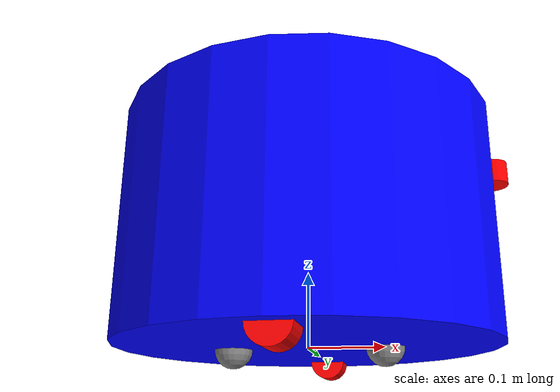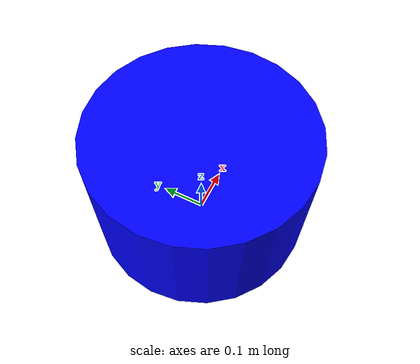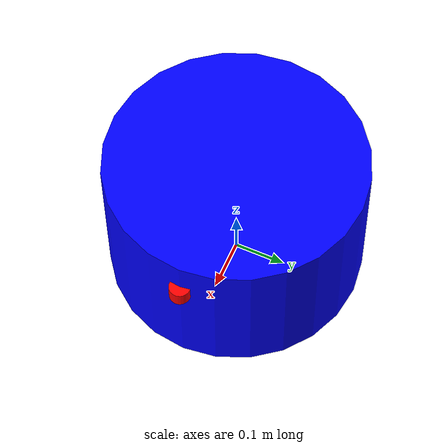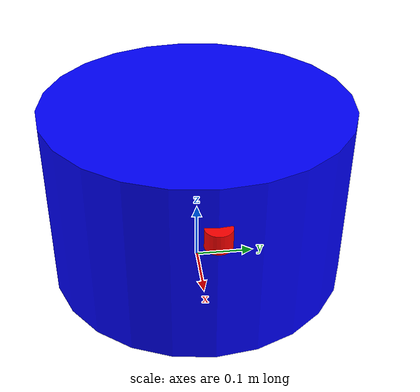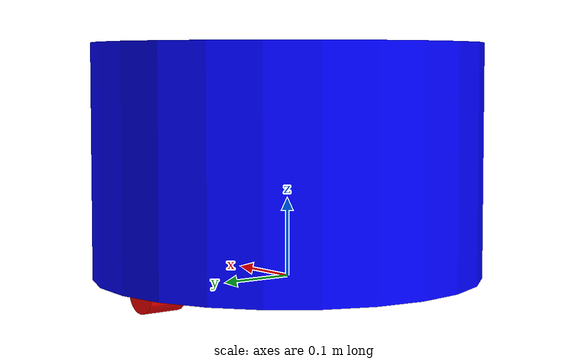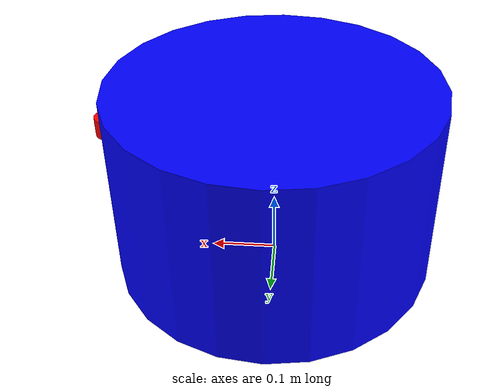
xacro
<?xml version="1.0"?>
<robot name="rb1" xmlns:xacro="http://www.ros.org/wiki/xacro">

    <xacro:include filename="$(find my_rb1_description)/urdf/my_rb1_robot.gazebo" />

    <!-- Materials -->
    <material name="blue">
        <color rgba="0 0 1 1"/>
    </material>

    <material name="red">
        <color rgba="1 0 0 1"/>
    </material>

    <material name="gray">
        <color rgba="0.5 0.5 0.5 1"/>
    </material>

    <!-- Macros for Inertia -->
    <xacro:macro name="cylinder_inertia" params="m r h xyz rpy">
        <inertial>
            <origin xyz="${xyz}" rpy="${rpy}" />
            <mass value="${m}" />
            <inertia ixx="${(m/12) * (3*r*r + h*h)}" ixy="0" ixz="0"
                     iyy="${(m/12) * (3*r*r + h*h)}" iyz="0"
                     izz="${(m/2) * (r*r)}" />
        </inertial>
    </xacro:macro>

    <xacro:macro name="sphere_inertia" params="m r xyz rpy">
        <inertial>
            <origin xyz="${xyz}" rpy="${rpy}" />
            <mass value="${m}" />
            <inertia ixx="${(2/5) * m * r * r}" ixy="0" ixz="0"
                     iyy="${(2/5) * m * r * r}" iyz="0"
                     izz="${(2/5) * m * r * r}" />
        </inertial>
    </xacro:macro>

    <!-- Base Link -->
    <link name="base_footprint" />

    <link name="base_link">
        <visual>
            <geometry>
                <cylinder radius="0.25" length="0.3" />
            </geometry>
            <origin xyz="0 0 0" rpy="0 0 0" />
            <material name="blue" />
        </visual>
        <collision>
            <geometry>
                <cylinder radius="0.25" length="0.3" />
            </geometry>
            <origin xyz="0 0 0" rpy="0 0 0" />
        </collision>
        <xacro:cylinder_inertia m="19.5" r="0.25" h="0.3"
                                xyz="0 0 0" rpy="0 0 0" />
    </link>

    <joint name="base_joint" type="fixed">
        <parent link="base_footprint" />
        <child link="base_link" />
        <origin xyz="0 0 0.15" rpy="0 0 0"/>
    </joint>

    <!-- Drive Wheels -->
    <link name="left_wheel">
        <visual>
            <geometry>
                <cylinder radius="0.025" length="0.05"/>
            </geometry>
            <origin xyz="0 0 0" rpy="0 0 0" />
            <material name="red" />
        </visual>
        <collision>
            <geometry>
                <cylinder radius="0.025" length="0.05"/>
            </geometry>
            <origin xyz="0 0 0" rpy="0 0 0" />
        </collision>
        <xacro:cylinder_inertia m="1.25" r="0.025" h="0.05"
                                xyz="0 0 0" rpy="0 0 0" />
    </link>

    <joint name="left_wheel_joint" type="continuous">
        <parent link="base_link"/>
        <child link="left_wheel"/>
        <origin xyz="0.0 -0.2 -0.15" rpy="1.570795 0 0"/>
        <axis xyz="0 0 -1"/>
    </joint>

    <link name="right_wheel">
        <visual>
            <geometry>
                <cylinder radius="0.025" length="0.05"/>
            </geometry>
            <origin xyz="0 0 0" rpy="0 0 0" />
            <material name="red" />
        </visual>
        <collision>
            <geometry>
                <cylinder radius="0.025" length="0.05"/>
            </geometry>
            <origin xyz="0 0 0" rpy="0 0 0" />
        </collision>
        <xacro:cylinder_inertia m="1.25" r="0.025" h="0.05"
                                xyz="0 0 0" rpy="0 0 0" />
    </link>

    <joint name="right_wheel_joint" type="continuous">
        <parent link="base_link"/>
        <child link="right_wheel"/>
        <origin xyz="0.0 0.2 -0.15" rpy="1.570795 0 0"/>
        <axis xyz="0 0 -1"/>
    </joint>

    <!-- Caster Wheels -->
    <link name="front_caster">
        <visual>
            <geometry>
                <sphere radius="0.025"/>
            </geometry>
            <material name="gray" />
        </visual>
        <collision>
            <geometry>
                <sphere radius="0.025"/>
            </geometry>
            <origin xyz="0 0 0" rpy="0 0 0" />
        </collision>
        <xacro:sphere_inertia m="1.25" r="0.025" xyz="0 0 0" rpy="0 0 0" />
    </link>

    <joint name="front_caster_joint" type="fixed">
        <parent link="base_link"/>
        <child link="front_caster"/>
        <origin xyz="0.1 0.0 -0.15" rpy="0 0 0"/>
    </joint>

    <link name="back_caster">
        <visual>
            <geometry>
                <sphere radius="0.025"/>
            </geometry>
            <material name="gray" />
        </visual>
        <collision>
            <geometry>
                <sphere radius="0.025"/>
            </geometry>
            <origin xyz="0 0 0" rpy="0 0 0" />
        </collision>
        <xacro:sphere_inertia m="1.25" r="0.025" xyz="0 0 0" rpy="0 0 0" />
    </link>

    <joint name="back_caster_joint" type="fixed">
        <parent link="base_link"/>
        <child link="back_caster"/>
        <origin xyz="-0.1 0.0 -0.15" rpy="0 0 0"/>
    </joint>

    <!-- Front Laser -->
    <link name="front_laser">
        <visual>
            <geometry>
                <cylinder radius="0.02" length="0.03"/>
            </geometry>
            <origin xyz="0 0 0" rpy="0 0 0" />
            <material name="red" />
        </visual>
        <collision>
            <geometry>
                <cylinder radius="0.02" length="0.03"/>
            </geometry>
            <origin xyz="0 0 0" rpy="0 0 0" />
        </collision>
        <xacro:cylinder_inertia m="0.5" r="0.02" h="0.03"
                                xyz="0 0 0" rpy="0 0 0" />
    </link>

    <joint name="front_laser_joint" type="fixed">
        <parent link="base_link"/>
        <child link="front_laser"/>
        <origin xyz="0.25 0.0 0.075" rpy="3.14159 0 0"/>
    </joint>

</robot>
